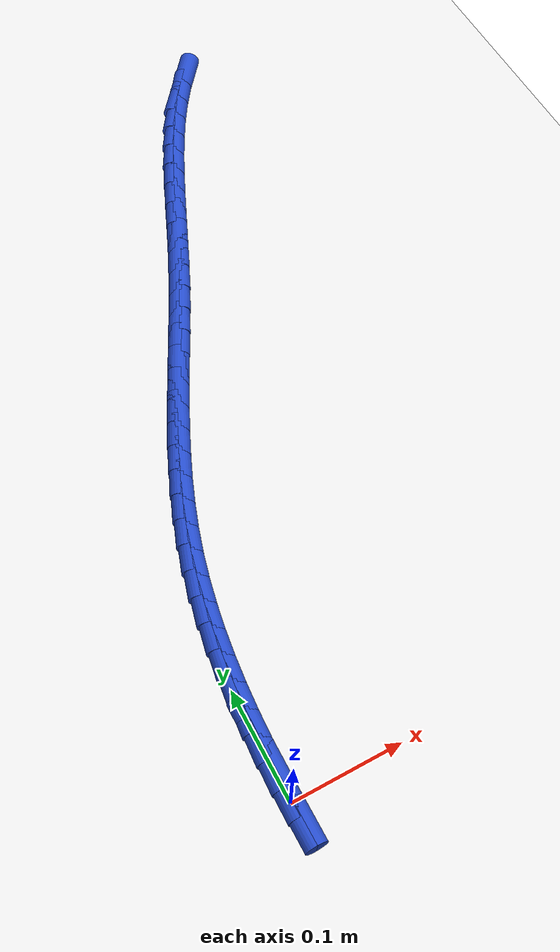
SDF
<sdf version="1.6">
 <world name="default">
  <model name="ground_plane">
   <static>1</static>
   <link name="link">
    <collision name="collision">
     <geometry><plane><normal>0 0 1</normal><size>100 100</size></plane></geometry>
     <surface><friction><ode><mu>100</mu><mu2>50</mu2></ode></friction></surface>
    </collision>
    <visual name="visual">
     <cast_shadows>0</cast_shadows>
     <geometry><plane><normal>0 0 1</normal><size>100 100</size></plane></geometry>
     <material>
      <script><uri>file://media/materials/scripts/gazebo.material</uri><name>Gazebo/WhiteGlow</name></script>
     </material>
    </visual>
   </link>
  </model>
  <model name="line">
   <link name="link_0">
    <pose>4.336808689942018e-18 4.85722573273506e-17 0.01 0 1.57 -1.5600704985763028</pose>
    <collision name="collision">
     <geometry><cylinder><radius>0.01</radius><length>0.08</length></cylinder></geometry>
    </collision>
    <visual name="visual">
     <material>
      <script><name>Gazebo/Blue</name><uri>file://media/materials/scripts/gazebo.material</uri></script>
     </material>
     <geometry><cylinder><radius>0.01</radius><length>0.08</length></cylinder></geometry>
    </visual>
   </link>
   <link name="link_1">
    <pose>-0.0002594113208012447 0.02418474057067221 0.01 0 1.57 1.5566355840279211</pose>
    <collision name="collision">
     <geometry><cylinder><radius>0.01</radius><length>0.08</length></cylinder></geometry>
    </collision>
    <visual name="visual">
     <material>
      <script><name>Gazebo/Blue</name><uri>file://media/materials/scripts/gazebo.material</uri></script>
     </material>
     <geometry><cylinder><radius>0.01</radius><length>0.08</length></cylinder></geometry>
    </visual>
   </link>
   <link name="link_2">
    <pose>8.432898004426565e-05 0.048457289675787565 0.01 0 1.57 1.5299951298431929</pose>
    <collision name="collision">
     <geometry><cylinder><radius>0.01</radius><length>0.08</length></cylinder></geometry>
    </collision>
    <visual name="visual">
     <material>
      <script><name>Gazebo/Blue</name><uri>file://media/materials/scripts/gazebo.material</uri></script>
     </material>
     <geometry><cylinder><radius>0.01</radius><length>0.08</length></cylinder></geometry>
    </visual>
   </link>
   <link name="link_3">
    <pose>0.0010763455788256571 0.07275721539569707 0.01 0 1.57 1.5014542429999145</pose>
    <collision name="collision">
     <geometry><cylinder><radius>0.01</radius><length>0.08</length></cylinder></geometry>
    </collision>
    <visual name="visual">
     <material>
      <script><name>Gazebo/Blue</name><uri>file://media/materials/scripts/gazebo.material</uri></script>
     </material>
     <geometry><cylinder><radius>0.01</radius><length>0.08</length></cylinder></geometry>
    </visual>
   </link>
   <link name="link_4">
    <pose>0.0027617631518320586 0.0970240858107516 0.01 0 1.57 1.4708571564264772</pose>
    <collision name="collision">
     <geometry><cylinder><radius>0.01</radius><length>0.08</length></cylinder></geometry>
    </collision>
    <visual name="visual">
     <material>
      <script><name>Gazebo/Blue</name><uri>file://media/materials/scripts/gazebo.material</uri></script>
     </material>
     <geometry><cylinder><radius>0.01</radius><length>0.08</length></cylinder></geometry>
    </visual>
   </link>
   <link name="link_5">
    <pose>0.005185706375352599 0.12119746900130204 0.01 0 1.57 1.4380403393588337</pose>
    <collision name="collision">
     <geometry><cylinder><radius>0.01</radius><length>0.08</length></cylinder></geometry>
    </collision>
    <visual name="visual">
     <material>
      <script><name>Gazebo/Blue</name><uri>file://media/materials/scripts/gazebo.material</uri></script>
     </material>
     <geometry><cylinder><radius>0.01</radius><length>0.08</length></cylinder></geometry>
    </visual>
   </link>
   <link name="link_6">
    <pose>0.008393299925676398 0.14521693304769934 0.01 0 1.57 1.4028349200547487</pose>
    <collision name="collision">
     <geometry><cylinder><radius>0.01</radius><length>0.08</length></cylinder></geometry>
    </collision>
    <visual name="visual">
     <material>
      <script><name>Gazebo/Blue</name><uri>file://media/materials/scripts/gazebo.material</uri></script>
     </material>
     <geometry><cylinder><radius>0.01</radius><length>0.08</length></cylinder></geometry>
    </visual>
   </link>
   <link name="link_7">
    <pose>0.012429668479092586 0.1690220460302944 0.01 0 1.57 1.3650703853573645</pose>
    <collision name="collision">
     <geometry><cylinder><radius>0.01</radius><length>0.08</length></cylinder></geometry>
    </collision>
    <visual name="visual">
     <material>
      <script><name>Gazebo/Blue</name><uri>file://media/materials/scripts/gazebo.material</uri></script>
     </material>
     <geometry><cylinder><radius>0.01</radius><length>0.08</length></cylinder></geometry>
    </visual>
   </link>
   <link name="link_8">
    <pose>0.01733993671189029 0.19255237602943806 0.01 0 1.57 1.3245799037931814</pose>
    <collision name="collision">
     <geometry><cylinder><radius>0.01</radius><length>0.08</length></cylinder></geometry>
    </collision>
    <visual name="visual">
     <material>
      <script><name>Gazebo/Blue</name><uri>file://media/materials/scripts/gazebo.material</uri></script>
     </material>
     <geometry><cylinder><radius>0.01</radius><length>0.08</length></cylinder></geometry>
    </visual>
   </link>
   <link name="link_9">
    <pose>0.02316922930035863 0.21574749112548133 0.01 0 1.57 1.2816577159159306</pose>
    <collision name="collision">
     <geometry><cylinder><radius>0.01</radius><length>0.08</length></cylinder></geometry>
    </collision>
    <visual name="visual">
     <material>
      <script><name>Gazebo/Blue</name><uri>file://media/materials/scripts/gazebo.material</uri></script>
     </material>
     <geometry><cylinder><radius>0.01</radius><length>0.08</length></cylinder></geometry>
    </visual>
   </link>
   <link name="link_10">
    <pose>0.029953688595491558 0.23855431811630112 0.01 0 1.57 1.2408650860813086</pose>
    <collision name="collision">
     <geometry><cylinder><radius>0.01</radius><length>0.08</length></cylinder></geometry>
    </collision>
    <visual name="visual">
     <material>
      <script><name>Gazebo/Blue</name><uri>file://media/materials/scripts/gazebo.material</uri></script>
     </material>
     <geometry><cylinder><radius>0.01</radius><length>0.08</length></cylinder></geometry>
    </visual>
   </link>
   <link name="link_11">
    <pose>0.03763827852464199 0.26099448119070556 0.01 0 1.57 1.205128919519956</pose>
    <collision name="collision">
     <geometry><cylinder><radius>0.01</radius><length>0.08</length></cylinder></geometry>
    </collision>
    <visual name="visual">
     <material>
      <script><name>Gazebo/Blue</name><uri>file://media/materials/scripts/gazebo.material</uri></script>
     </material>
     <geometry><cylinder><radius>0.01</radius><length>0.08</length></cylinder></geometry>
    </visual>
   </link>
   <link name="link_12">
    <pose>0.04611487049312075 0.2831331002760352 0.01 0 1.57 1.1746962308401403</pose>
    <collision name="collision">
     <geometry><cylinder><radius>0.01</radius><length>0.08</length></cylinder></geometry>
    </collision>
    <visual name="visual">
     <material>
      <script><name>Gazebo/Blue</name><uri>file://media/materials/scripts/gazebo.material</uri></script>
     </material>
     <geometry><cylinder><radius>0.01</radius><length>0.08</length></cylinder></geometry>
    </visual>
   </link>
   <link name="link_13">
    <pose>0.055274676258217165 0.305035835712419 0.01 0 1.57 1.149680969126531</pose>
    <collision name="collision">
     <geometry><cylinder><radius>0.01</radius><length>0.08</length></cylinder></geometry>
    </collision>
    <visual name="visual">
     <material>
      <script><name>Gazebo/Blue</name><uri>file://media/materials/scripts/gazebo.material</uri></script>
     </material>
     <geometry><cylinder><radius>0.01</radius><length>0.08</length></cylinder></geometry>
    </visual>
   </link>
   <link name="link_14">
    <pose>0.0650089075772205 0.3267683478399855 0.01 0 1.57 1.1301209041413802</pose>
    <collision name="collision">
     <geometry><cylinder><radius>0.01</radius><length>0.08</length></cylinder></geometry>
    </collision>
    <visual name="visual">
     <material>
      <script><name>Gazebo/Blue</name><uri>file://media/materials/scripts/gazebo.material</uri></script>
     </material>
     <geometry><cylinder><radius>0.01</radius><length>0.08</length></cylinder></geometry>
    </visual>
   </link>
   <link name="link_15">
    <pose>0.07520877620742021 0.34839629699886393 0.01 0 1.57 1.1159995671180485</pose>
    <collision name="collision">
     <geometry><cylinder><radius>0.01</radius><length>0.08</length></cylinder></geometry>
    </collision>
    <visual name="visual">
     <material>
      <script><name>Gazebo/Blue</name><uri>file://media/materials/scripts/gazebo.material</uri></script>
     </material>
     <geometry><cylinder><radius>0.01</radius><length>0.08</length></cylinder></geometry>
    </visual>
   </link>
   <link name="link_16">
    <pose>0.08576549390610548 0.36998534352918255 0.01 0 1.57 1.10726432864977</pose>
    <collision name="collision">
     <geometry><cylinder><radius>0.01</radius><length>0.08</length></cylinder></geometry>
    </collision>
    <visual name="visual">
     <material>
      <script><name>Gazebo/Blue</name><uri>file://media/materials/scripts/gazebo.material</uri></script>
     </material>
     <geometry><cylinder><radius>0.01</radius><length>0.08</length></cylinder></geometry>
    </visual>
   </link>
   <link name="link_17">
    <pose>0.0965702724305657 0.3916011477710707 0.01 0 1.57 1.1038397107177151</pose>
    <collision name="collision">
     <geometry><cylinder><radius>0.01</radius><length>0.08</length></cylinder></geometry>
    </collision>
    <visual name="visual">
     <material>
      <script><name>Gazebo/Blue</name><uri>file://media/materials/scripts/gazebo.material</uri></script>
     </material>
     <geometry><cylinder><radius>0.01</radius><length>0.08</length></cylinder></geometry>
    </visual>
   </link>
   <link name="link_18">
    <pose>0.10751432353809012 0.4133093700646566 0.01 0 1.57 1.1056357497975802</pose>
    <collision name="collision">
     <geometry><cylinder><radius>0.01</radius><length>0.08</length></cylinder></geometry>
    </collision>
    <visual name="visual">
     <material>
      <script><name>Gazebo/Blue</name><uri>file://media/materials/scripts/gazebo.material</uri></script>
     </material>
     <geometry><cylinder><radius>0.01</radius><length>0.08</length></cylinder></geometry>
    </visual>
   </link>
   <link name="link_19">
    <pose>0.11848885898596817 0.43517567075006963 0.01 0 1.57 1.1125516474508779</pose>
    <collision name="collision">
     <geometry><cylinder><radius>0.01</radius><length>0.08</length></cylinder></geometry>
    </collision>
    <visual name="visual">
     <material>
      <script><name>Gazebo/Blue</name><uri>file://media/materials/scripts/gazebo.material</uri></script>
     </material>
     <geometry><cylinder><radius>0.01</radius><length>0.08</length></cylinder></geometry>
    </visual>
   </link>
   <link name="link_20">
    <pose>0.12938509053148908 0.4572657101674382 0.01 0 1.57 1.1244751622478417</pose>
    <collision name="collision">
     <geometry><cylinder><radius>0.01</radius><length>0.08</length></cylinder></geometry>
    </collision>
    <visual name="visual">
     <material>
      <script><name>Gazebo/Blue</name><uri>file://media/materials/scripts/gazebo.material</uri></script>
     </material>
     <geometry><cylinder><radius>0.01</radius><length>0.08</length></cylinder></geometry>
    </visual>
   </link>
   <link name="link_21">
    <pose>0.1400942299319422 0.47964514865689134 0.01 0 1.57 1.140698608995218</pose>
    <collision name="collision">
     <geometry><cylinder><radius>0.01</radius><length>0.08</length></cylinder></geometry>
    </collision>
    <visual name="visual">
     <material>
      <script><name>Gazebo/Blue</name><uri>file://media/materials/scripts/gazebo.material</uri></script>
     </material>
     <geometry><cylinder><radius>0.01</radius><length>0.08</length></cylinder></geometry>
    </visual>
   </link>
   <link name="link_22">
    <pose>0.15051884595879075 0.5023696373357445 0.01 0 1.57 1.1538595059746448</pose>
    <collision name="collision">
     <geometry><cylinder><radius>0.01</radius><length>0.08</length></cylinder></geometry>
    </collision>
    <visual name="visual">
     <material>
      <script><name>Gazebo/Blue</name><uri>file://media/materials/scripts/gazebo.material</uri></script>
     </material>
     <geometry><cylinder><radius>0.01</radius><length>0.08</length></cylinder></geometry>
    </visual>
   </link>
   <link name="link_23">
    <pose>0.16070504473985237 0.5253683242316982 0.01 0 1.57 1.159137282129465</pose>
    <collision name="collision">
     <geometry><cylinder><radius>0.01</radius><length>0.08</length></cylinder></geometry>
    </collision>
    <visual name="visual">
     <material>
      <script><name>Gazebo/Blue</name><uri>file://media/materials/scripts/gazebo.material</uri></script>
     </material>
     <geometry><cylinder><radius>0.01</radius><length>0.08</length></cylinder></geometry>
    </visual>
   </link>
   <link name="link_24">
    <pose>0.17079731385656666 0.5484836513179461 0.01 0 1.57 1.1565526897229124</pose>
    <collision name="collision">
     <geometry><cylinder><radius>0.01</radius><length>0.08</length></cylinder></geometry>
    </collision>
    <visual name="visual">
     <material>
      <script><name>Gazebo/Blue</name><uri>file://media/materials/scripts/gazebo.material</uri></script>
     </material>
     <geometry><cylinder><radius>0.01</radius><length>0.08</length></cylinder></geometry>
    </visual>
   </link>
   <link name="link_25">
    <pose>0.1809420608020265 0.5715563685011549 0.01 0 1.57 1.146062453418453</pose>
    <collision name="collision">
     <geometry><cylinder><radius>0.01</radius><length>0.08</length></cylinder></geometry>
    </collision>
    <visual name="visual">
     <material>
      <script><name>Gazebo/Blue</name><uri>file://media/materials/scripts/gazebo.material</uri></script>
     </material>
     <geometry><cylinder><radius>0.01</radius><length>0.08</length></cylinder></geometry>
    </visual>
   </link>
   <link name="link_26">
    <pose>0.19128569306932497 0.594427225687992 0.01 0 1.57 1.1274641606894484</pose>
    <collision name="collision">
     <geometry><cylinder><radius>0.01</radius><length>0.08</length></cylinder></geometry>
    </collision>
    <visual name="visual">
     <material>
      <script><name>Gazebo/Blue</name><uri>file://media/materials/scripts/gazebo.material</uri></script>
     </material>
     <geometry><cylinder><radius>0.01</radius><length>0.08</length></cylinder></geometry>
    </visual>
   </link>
   <link name="link_27">
    <pose>0.20197461815155496 0.616936972785124 0.01 0 1.57 1.1004071970711633</pose>
    <collision name="collision">
     <geometry><cylinder><radius>0.01</radius><length>0.08</length></cylinder></geometry>
    </collision>
    <visual name="visual">
     <material>
      <script><name>Gazebo/Blue</name><uri>file://media/materials/scripts/gazebo.material</uri></script>
     </material>
     <geometry><cylinder><radius>0.01</radius><length>0.08</length></cylinder></geometry>
    </visual>
   </link>
   <link name="link_28">
    <pose>0.2131552435418096 0.6389263596992186 0.01 0 1.57 1.0644164259000384</pose>
    <collision name="collision">
     <geometry><cylinder><radius>0.01</radius><length>0.08</length></cylinder></geometry>
    </collision>
    <visual name="visual">
     <material>
      <script><name>Gazebo/Blue</name><uri>file://media/materials/scripts/gazebo.material</uri></script>
     </material>
     <geometry><cylinder><radius>0.01</radius><length>0.08</length></cylinder></geometry>
    </visual>
   </link>
   <link name="link_29">
    <pose>0.2249739767331818 0.6602361363369424 0.01 0 1.57 1.0189372276397004</pose>
    <collision name="collision">
     <geometry><cylinder><radius>0.01</radius><length>0.08</length></cylinder></geometry>
    </collision>
    <visual name="visual">
     <material>
      <script><name>Gazebo/Blue</name><uri>file://media/materials/scripts/gazebo.material</uri></script>
     </material>
     <geometry><cylinder><radius>0.01</radius><length>0.08</length></cylinder></geometry>
    </visual>
   </link>
   <link name="link_30">
    <pose>0.23757722521876468 0.6807070526049627 0.01 0 1.57 0.9634141751349451</pose>
    <collision name="collision">
     <geometry><cylinder><radius>0.01</radius><length>0.08</length></cylinder></geometry>
    </collision>
    <visual name="visual">
     <material>
      <script><name>Gazebo/Blue</name><uri>file://media/materials/scripts/gazebo.material</uri></script>
     </material>
     <geometry><cylinder><radius>0.01</radius><length>0.08</length></cylinder></geometry>
    </visual>
   </link>
   <link name="link_31">
    <pose>0.2511113964916511 0.7001798584099466 0.01 0 1.57 0.8974169943597563</pose>
    <collision name="collision">
     <geometry><cylinder><radius>0.01</radius><length>0.08</length></cylinder></geometry>
    </collision>
    <visual name="visual">
     <material>
      <script><name>Gazebo/Blue</name><uri>file://media/materials/scripts/gazebo.material</uri></script>
     </material>
     <geometry><cylinder><radius>0.01</radius><length>0.08</length></cylinder></geometry>
    </visual>
   </link>
   <link name="link_280">
    <pose>4.336808689942018e-19 5.551115123125783e-17 0.01 0 1.57 -1.5599782443019479</pose>
    <collision name="collision">
     <geometry><cylinder><radius>0.01</radius><length>0.08</length></cylinder></geometry>
    </collision>
    <visual name="visual">
     <material>
      <script><name>Gazebo/Blue</name><uri>file://media/materials/scripts/gazebo.material</uri></script>
     </material>
     <geometry><cylinder><radius>0.01</radius><length>0.08</length></cylinder></geometry>
    </visual>
   </link>
   <link name="link_281">
    <pose>-0.00026181526029496385 0.024200688698140637 0.01 0 1.57 1.5573903783659542</pose>
    <collision name="collision">
     <geometry><cylinder><radius>0.01</radius><length>0.08</length></cylinder></geometry>
    </collision>
    <visual name="visual">
     <material>
      <script><name>Gazebo/Blue</name><uri>file://media/materials/scripts/gazebo.material</uri></script>
     </material>
     <geometry><cylinder><radius>0.01</radius><length>0.08</length></cylinder></geometry>
    </visual>
   </link>
   <link name="link_282">
    <pose>6.509746409453197e-05 0.048584874695535615 0.01 0 1.57 1.5694564566079914</pose>
    <collision name="collision">
     <geometry><cylinder><radius>0.01</radius><length>0.08</length></cylinder></geometry>
    </collision>
    <visual name="visual">
     <material>
      <script><name>Gazebo/Blue</name><uri>file://media/materials/scripts/gazebo.material</uri></script>
     </material>
     <geometry><cylinder><radius>0.01</radius><length>0.08</length></cylinder></geometry>
    </visual>
   </link>
  </model>
 </world>
</sdf>
